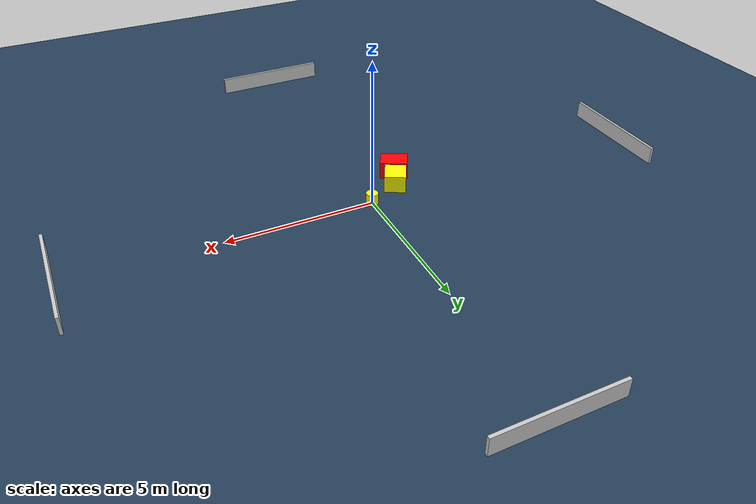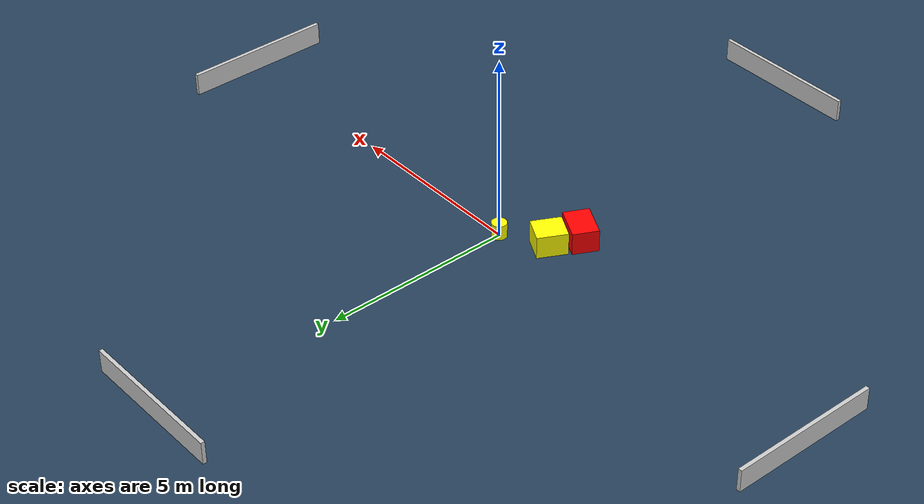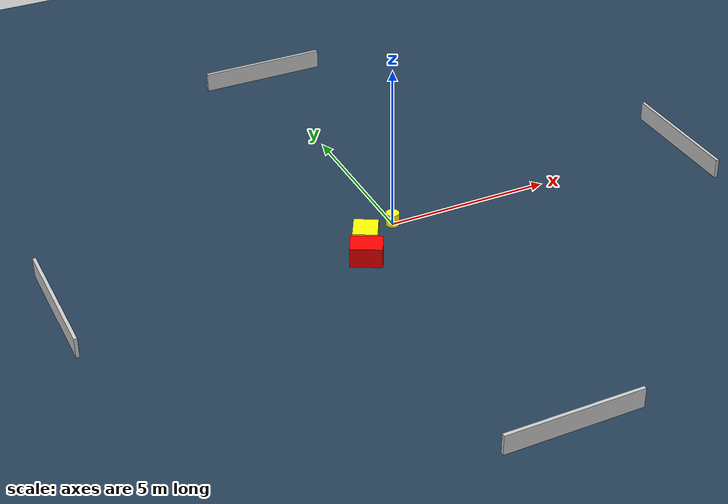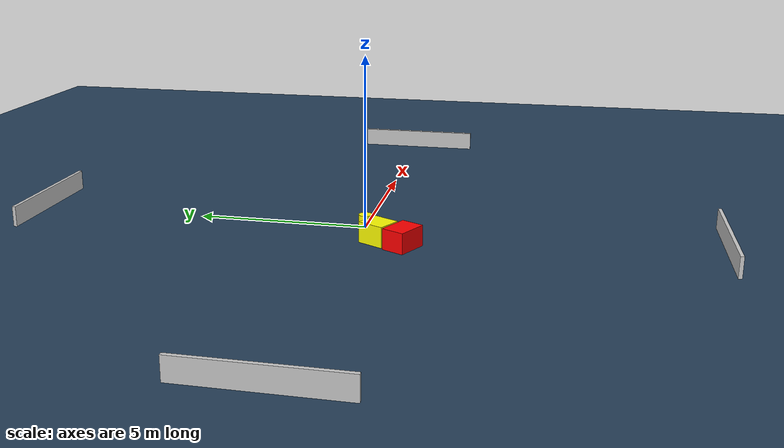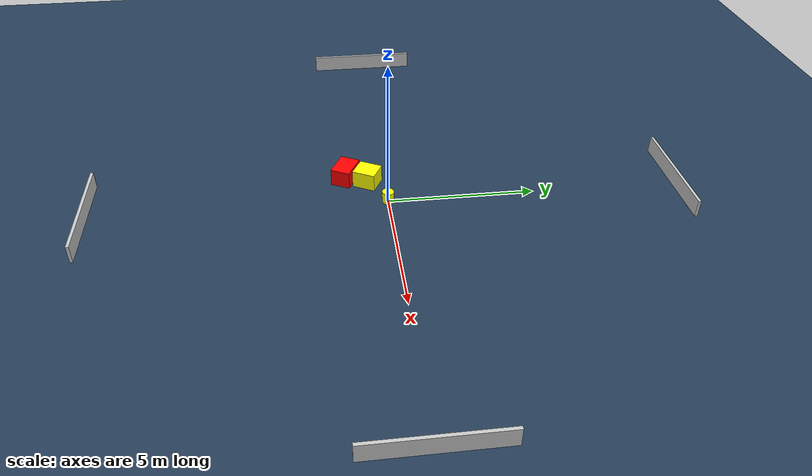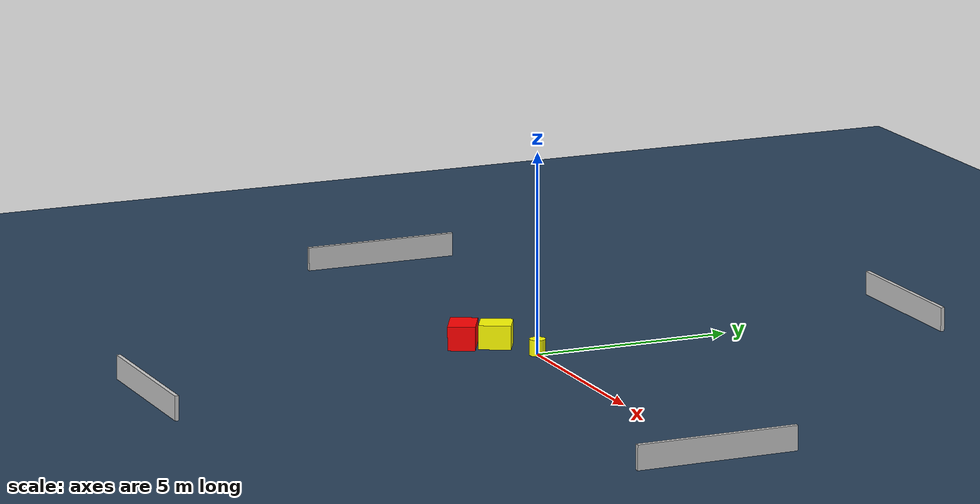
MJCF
<?xml version="1.0" ?>
<mujoco model="generated_environment">
  <option timestep="0.01" integrator="RK4" cone="elliptic"/>
  <default>
    <geom density="1"/>
  </default>
  <asset>
    <texture builtin="gradient" height="3072" name="skybox" rgb1="0.3 0.5 0.7" rgb2="0 0 0" type="skybox" width="512"/>
    <texture builtin="checker" height="300" name="groundplane" rgb1="0.2 0.3 0.4" rgb2="0.1 0.2 0.3" type="2d" width="300"/>
    <material name="groundplane" reflectance="0.2" texrepeat="5 5" texture="groundplane"/>
  </asset>
  <worldbody>
    <light dir="0 0 -1" directional="true" pos="0 0 1.5"/>
    <geom condim="3" friction="0.5 0.005 0.001" material="groundplane" name="floor" pos="0 0 0" size="0 0 0.05" type="plane"/>
    <body name="walls">
      <geom name="wall_1" condim="4" pos="-10.0 0.0 0.3" rgba="0.800000011920929 0.800000011920929 0.800000011920929 1.0" size="0.05 2.0 0.3" type="box"/>
      <geom name="wall_2" condim="4" pos="10.0 0.0 0.3" rgba="0.800000011920929 0.800000011920929 0.800000011920929 1.0" size="0.05 2.0 0.3" type="box"/>
      <geom name="wall_3" condim="4" pos="0.0 -10.0 0.3" rgba="0.800000011920929 0.800000011920929 0.800000011920929 1.0" size="2.0 0.05 0.3" type="box"/>
      <geom name="wall_4" condim="4" pos="0.0 10.0 0.3" rgba="0.800000011920929 0.800000011920929 0.800000011920929 1.0" size="2.0 0.05 0.3" type="box"/>
    </body>
    <body name="robot">
      <joint name="joint_x" type="slide" pos="0 0 0" axis="1 0 0"/>
      <joint name="joint_y" type="slide" pos="0 0 0" axis="0 1 0"/>
      <geom name="robot" type="cylinder" pos="0.0 0.0 0.2" size="0.2 0.2 0.0" mass="5.0" friction="1.0 0.005 0.0001" condim="4" rgba="1.0 1.0 0.0 1.0"/>
    </body>
    <body name="obstacle_1_movable">
      <geom name="obstacle_1_movable" condim="4" pos="-1.1476040481698688 -0.5966557718905046 0.3" euler="0 0 62.05471356547876" friction="0.0 0.005 0.001" rgba="1.0 1.0 0.0 1.0" size="0.3987544179299424 0.35960383463785517 0.3" type="box" mass="0.1"/>
      <joint type="free"/>
    </body>
    <body name="obstacle_2_static">
      <geom name="obstacle_2_static" condim="4" pos="-1.4660542101297538 -1.3366962779245546 0.3" euler="0 0 242.76974159929395" friction="0.0 0.005 0.001" rgba="1.0 0.0 0.0 1.0" size="0.3391635238620637 0.4663151358793823 0.3" type="box"/>
    </body>
  </worldbody>
  <actuator>
    <motor name="actuator_x" joint="joint_x" gear="1" ctrlrange="-1 1"/>
    <motor name="actuator_y" joint="joint_y" gear="1" ctrlrange="-1 1"/>
  </actuator>
</mujoco>
